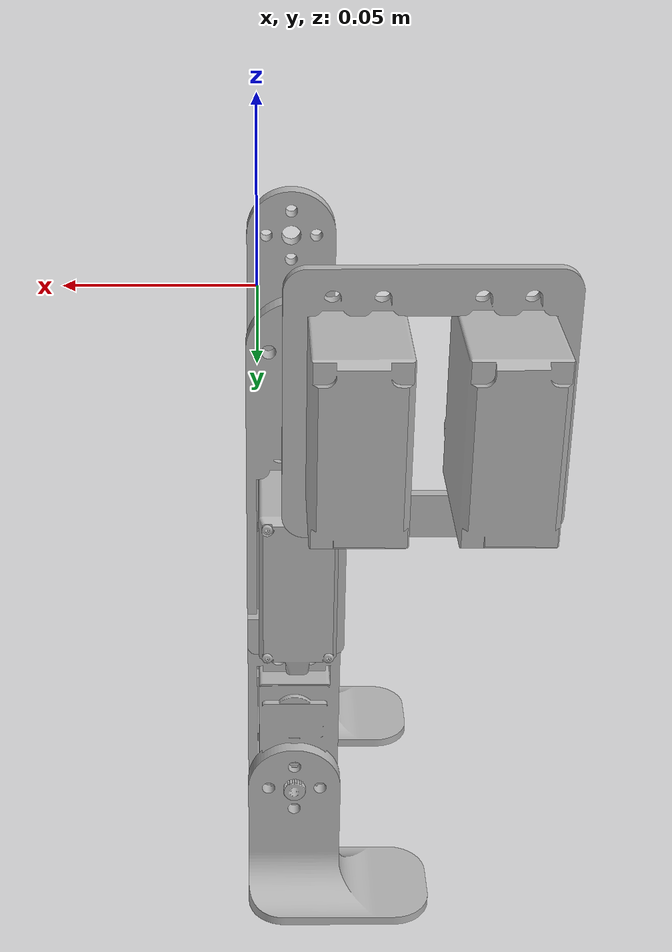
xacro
<?xml version="1.0" ?>
<robot name="HUMANOIDTANAKA3" xmlns:xacro="http://www.ros.org/wiki/xacro">

<xacro:include filename="materials.xacro" />

<link name="base_link">
  <inertial>
    <origin xyz="0.0 0.0 0.0" rpy="0 0 0"/>
    <mass value="0.0"/>
    <inertia ixx="0.0" iyy="0.0" izz="0.0" ixy="0.0" iyz="0.0" ixz="0.0"/>
  </inertial>
  <visual>
    <origin xyz="0 0 0" rpy="0 0 0"/>
    <geometry>
      <mesh filename="meshes/base_link.stl" scale="0.001 0.001 0.001"/>
    </geometry>
    <material name="silver"/>
  </visual>
  <collision>
    <origin xyz="0 0 0" rpy="0 0 0"/>
    <geometry>
      <mesh filename="meshes/base_link.stl" scale="0.001 0.001 0.001"/>
    </geometry>
  </collision>
</link>

<link name="Leg12_v1_1">
  <inertial>
    <origin xyz="0.009671 0.0387 0.128257" rpy="0 0 0"/>
    <mass value="0.0"/>
    <inertia ixx="0.0" iyy="0.0" izz="0.0" ixy="0.0" iyz="0.0" ixz="0.0"/>
  </inertial>
  <visual>
    <origin xyz="0.009671 0.0387 0.128257" rpy="0 0 0"/>
    <geometry>
      <mesh filename="meshes/Leg12_v1_1.stl" scale="0.001 0.001 0.001"/>
    </geometry>
    <material name="silver"/>
  </visual>
  <collision>
    <origin xyz="0.009671 0.0387 0.128257" rpy="0 0 0"/>
    <geometry>
      <mesh filename="meshes/Leg12_v1_1.stl" scale="0.001 0.001 0.001"/>
    </geometry>
  </collision>
</link>

<link name="Leg12_v1__1__1">
  <inertial>
    <origin xyz="0.009671 -0.0387 0.128257" rpy="0 0 0"/>
    <mass value="0.0"/>
    <inertia ixx="0.0" iyy="0.0" izz="0.0" ixy="0.0" iyz="0.0" ixz="0.0"/>
  </inertial>
  <visual>
    <origin xyz="0.009671 -0.0387 0.128257" rpy="0 0 0"/>
    <geometry>
      <mesh filename="meshes/Leg12_v1__1__1.stl" scale="0.001 0.001 0.001"/>
    </geometry>
    <material name="silver"/>
  </visual>
  <collision>
    <origin xyz="0.009671 -0.0387 0.128257" rpy="0 0 0"/>
    <geometry>
      <mesh filename="meshes/Leg12_v1__1__1.stl" scale="0.001 0.001 0.001"/>
    </geometry>
  </collision>
</link>

<link name="YAMAMOdogA.step_1">
  <inertial>
    <origin xyz="-3.6057498422475964e-07 -0.007085814129260223 -0.04903434210373424" rpy="0 0 0"/>
    <mass value="0.2760109571215271"/>
    <inertia ixx="0.000133" iyy="0.000115" izz="3.7e-05" ixy="-0.0" iyz="-6e-06" ixz="-0.0"/>
  </inertial>
  <visual>
    <origin xyz="0.009671 0.0387 -2.9e-05" rpy="0 0 0"/>
    <geometry>
      <mesh filename="meshes/YAMAMOdogA.step_1.stl" scale="0.001 0.001 0.001"/>
    </geometry>
    <material name="silver"/>
  </visual>
  <collision>
    <origin xyz="0.009671 0.0387 -2.9e-05" rpy="0 0 0"/>
    <geometry>
      <mesh filename="meshes/YAMAMOdogA.step_1.stl" scale="0.001 0.001 0.001"/>
    </geometry>
  </collision>
</link>

<link name="YAMAMOdogA.stepA_2">
  <inertial>
    <origin xyz="-3.6017147062201993e-07 0.007085814129260196 -0.04903406321225638" rpy="0 0 0"/>
    <mass value="0.2760109571215268"/>
    <inertia ixx="0.000133" iyy="0.000115" izz="3.7e-05" ixy="0.0" iyz="6e-06" ixz="-0.0"/>
  </inertial>
  <visual>
    <origin xyz="0.009671 0.0297 0.064114" rpy="0 0 0"/>
    <geometry>
      <mesh filename="meshes/YAMAMOdogA.stepA_2.stl" scale="0.001 0.001 0.001"/>
    </geometry>
    <material name="silver"/>
  </visual>
  <collision>
    <origin xyz="0.009671 0.0297 0.064114" rpy="0 0 0"/>
    <geometry>
      <mesh filename="meshes/YAMAMOdogA.stepA_2.stl" scale="0.001 0.001 0.001"/>
    </geometry>
  </collision>
</link>

<link name="YAMAMOdogA.step_2">
  <inertial>
    <origin xyz="-3.6012425457497554e-07 -0.007085814129260199 -0.049034063212256396" rpy="0 0 0"/>
    <mass value="0.2760109571215271"/>
    <inertia ixx="0.000133" iyy="0.000115" izz="3.7e-05" ixy="-0.0" iyz="-6e-06" ixz="-0.0"/>
  </inertial>
  <visual>
    <origin xyz="0.009671 -0.0297 0.064114" rpy="0 0 0"/>
    <geometry>
      <mesh filename="meshes/YAMAMOdogA.step_2.stl" scale="0.001 0.001 0.001"/>
    </geometry>
    <material name="silver"/>
  </visual>
  <collision>
    <origin xyz="0.009671 -0.0297 0.064114" rpy="0 0 0"/>
    <geometry>
      <mesh filename="meshes/YAMAMOdogA.step_2.stl" scale="0.001 0.001 0.001"/>
    </geometry>
  </collision>
</link>

<link name="YAMAMOdogA.stepA_1">
  <inertial>
    <origin xyz="-3.6062220026659986e-07 0.00708581412926023 -0.049034342103734224" rpy="0 0 0"/>
    <mass value="0.2760109571215268"/>
    <inertia ixx="0.000133" iyy="0.000115" izz="3.7e-05" ixy="0.0" iyz="6e-06" ixz="-0.0"/>
  </inertial>
  <visual>
    <origin xyz="0.009671 -0.0387 -2.9e-05" rpy="0 0 0"/>
    <geometry>
      <mesh filename="meshes/YAMAMOdogA.stepA_1.stl" scale="0.001 0.001 0.001"/>
    </geometry>
    <material name="silver"/>
  </visual>
  <collision>
    <origin xyz="0.009671 -0.0387 -2.9e-05" rpy="0 0 0"/>
    <geometry>
      <mesh filename="meshes/YAMAMOdogA.stepA_1.stl" scale="0.001 0.001 0.001"/>
    </geometry>
  </collision>
</link>

<joint name="��] 5" type="revolute">
  <origin xyz="0.0 -0.009 -0.064143" rpy="0 0 0"/>
  <parent link="YAMAMOdogA.stepA_2"/>
  <child link="Leg12_v1_1"/>
  <axis xyz="0.0 -1.0 0.0"/>
  <limit upper="1.570796" lower="-1.570796" effort="100" velocity="100"/>
</joint>

<joint name="��] 6" type="revolute">
  <origin xyz="0.0 0.009 -0.064143" rpy="0 0 0"/>
  <parent link="YAMAMOdogA.step_2"/>
  <child link="Leg12_v1__1__1"/>
  <axis xyz="0.0 1.0 0.0"/>
  <limit upper="1.570796" lower="-1.570796" effort="100" velocity="100"/>
</joint>

<joint name="��] 7" type="revolute">
  <origin xyz="-0.009671 -0.0387 2.9e-05" rpy="0 0 0"/>
  <parent link="base_link"/>
  <child link="YAMAMOdogA.step_1"/>
  <axis xyz="0.0 -1.0 0.0"/>
  <limit upper="1.570796" lower="-1.570796" effort="100" velocity="100"/>
</joint>

<joint name="��] 8" type="revolute">
  <origin xyz="0.0 0.009 -0.064143" rpy="0 0 0"/>
  <parent link="YAMAMOdogA.step_1"/>
  <child link="YAMAMOdogA.stepA_2"/>
  <axis xyz="0.0 1.0 0.0"/>
  <limit upper="1.570796" lower="-1.570796" effort="100" velocity="100"/>
</joint>

<joint name="��] 9" type="revolute">
  <origin xyz="0.0 -0.009 -0.064143" rpy="0 0 0"/>
  <parent link="YAMAMOdogA.stepA_1"/>
  <child link="YAMAMOdogA.step_2"/>
  <axis xyz="0.0 -1.0 0.0"/>
  <limit upper="1.570796" lower="-1.570796" effort="100" velocity="100"/>
</joint>

<joint name="��] 10" type="revolute">
  <origin xyz="-0.009671 0.0387 2.9e-05" rpy="0 0 0"/>
  <parent link="base_link"/>
  <child link="YAMAMOdogA.stepA_1"/>
  <axis xyz="0.0 1.0 0.0"/>
  <limit upper="1.570796" lower="-1.570796" effort="100" velocity="100"/>
</joint>

</robot>

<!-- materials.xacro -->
<robot name="HUMANOIDTANAKA3" xmlns:xacro="http://www.ros.org/wiki/xacro" >

<material name="silver">
  <color rgba="0.700 0.700 0.700 1.000"/>
</material>

</robot>
